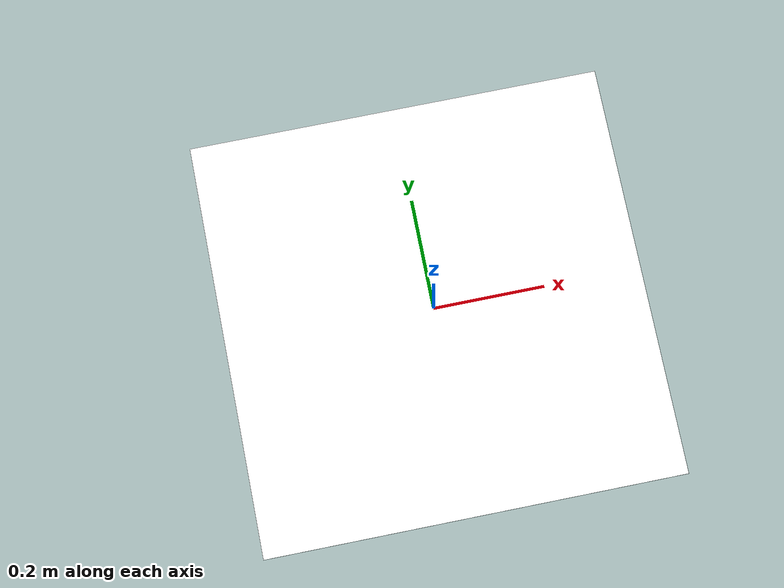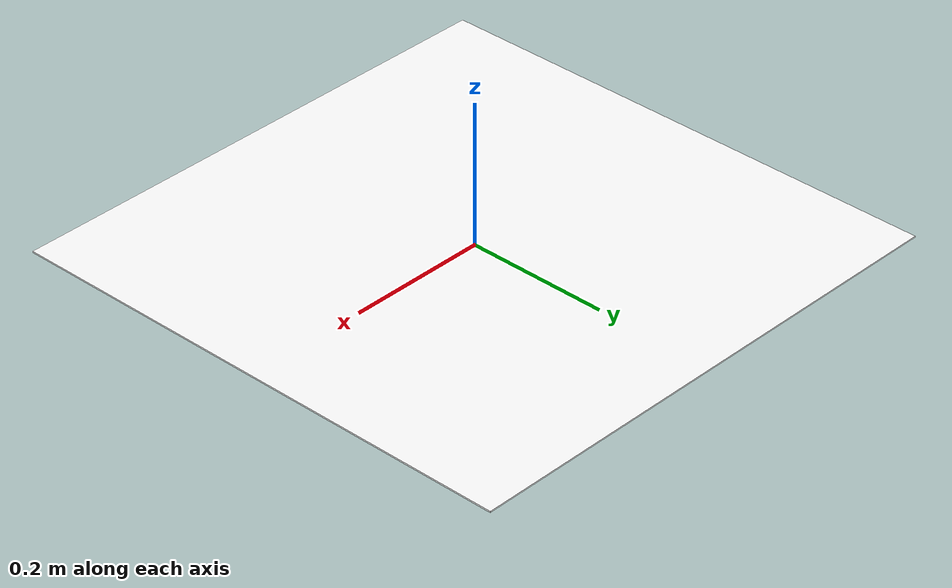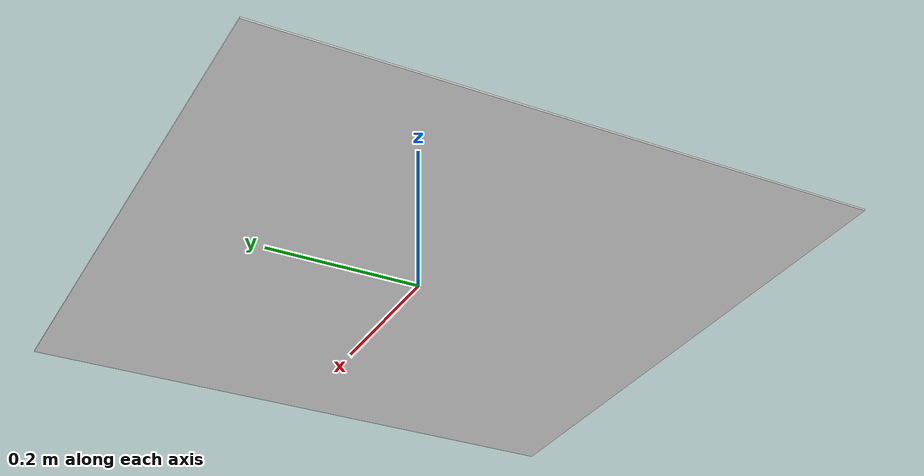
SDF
<?xml version="1.0"?>
<sdf version="1.8">
  <model name="apriltag_36h11_0">
    <static>true</static>
    <link name="link">
      <visual name="visual">
        <pose>0 0 0.001 0 0 0</pose>
        <geometry><box><size>0.75 0.75 0.002</size></box></geometry>
        <material>
          <diffuse>1 1 1 1</diffuse>
          <pbr><metal>
            <albedo_map>/lab/sim/models/apriltag_36h11_0/materials/textures/tag36h11_0.png</albedo_map>
          </metal></pbr>
        </material>
      </visual>
    </link>
  </model>
</sdf>
